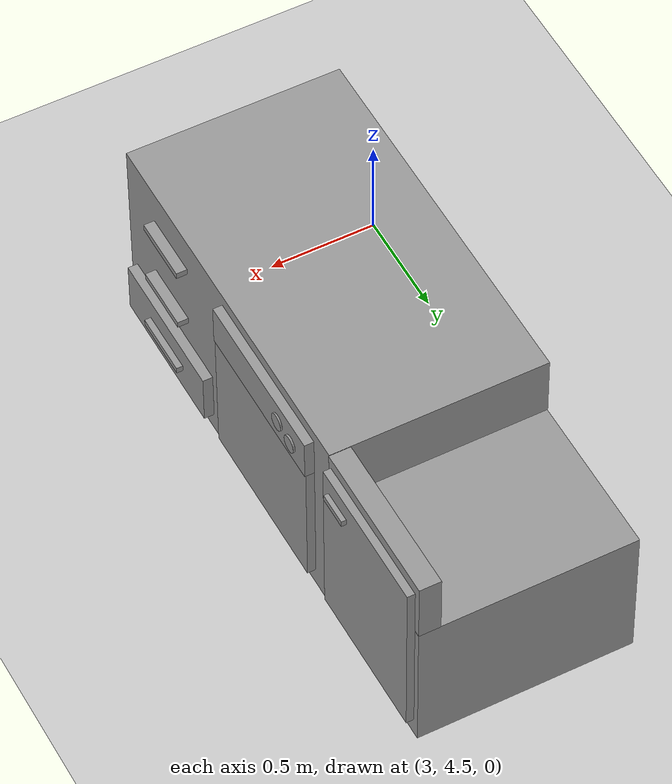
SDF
<sdf version="1.7">
 <world name="default">
  <model name="ground_plane">
   <static>1</static>
   <link name="link">
    <collision name="collision">
     <geometry><plane><normal>0 0 1</normal><size>100 100</size></plane></geometry>
     <surface>
      <contact><collide_bitmask>65535</collide_bitmask></contact>
      <friction><ode><mu>100</mu><mu2>50</mu2></ode></friction>
     </surface>
    </collision>
    <visual name="visual">
     <cast_shadows>0</cast_shadows>
     <geometry><plane><normal>0 0 1</normal><size>100 100</size></plane></geometry>
     <material>
      <script><uri>file://media/materials/scripts/gazebo.material</uri><name>Gazebo/Grey</name></script>
     </material>
    </visual>
   </link>
  </model>
  <model name="my_kitchen">
   <link name="link_0">
    <inertial>
     <mass>1</mass>
     <inertia><ixx>0.145833</ixx><ixy>0</ixy><ixz>0</ixz><iyy>0.145833</iyy><iyz>0</iyz><izz>0.125</izz></inertia>
    </inertial>
    <pose>-0.465747 -1.6095 0.842537 0 -0 0</pose>
    <visual name="visual">
     <pose>0 0 0 0 1.5707 0</pose>
     <geometry><cylinder><radius>0.04</radius><length>0.01</length></cylinder></geometry>
     <material>
      <lighting>1</lighting>
      <script><uri>file://media/materials/scripts/gazebo.material</uri><name>Gazebo/Grey</name></script>
      <shader type="pixel"><normal_map>__default__</normal_map></shader>
      <ambient>0.9 0.9 0.9 1</ambient>
      <diffuse>0.9 0.9 0.9 1</diffuse>
      <specular>0.01 0.01 0.01 1</specular>
      <emissive>0 0 0 1</emissive>
     </material>
    </visual>
    <collision name="collision">
     <pose>0 0 0 0 1.5707 0</pose>
     <geometry><cylinder><radius>0.04</radius><length>0.01</length></cylinder></geometry>
     <surface>
      <friction>
       <ode><mu>1</mu><mu2>1</mu2><fdir1>0 0 0</fdir1><slip1>0</slip1><slip2>0</slip2></ode>
       <torsional>
        <coefficient>1</coefficient>
        <patch_radius>0</patch_radius>
        <surface_radius>0</surface_radius>
        <use_patch_radius>1</use_patch_radius>
        <ode><slip>0</slip></ode>
       </torsional>
      </friction>
      <bounce><restitution_coefficient>0</restitution_coefficient><threshold>1e+06</threshold></bounce>
      <contact>
       <collide_without_contact>0</collide_without_contact>
       <collide_without_contact_bitmask>1</collide_without_contact_bitmask>
       <collide_bitmask>1</collide_bitmask>
       <ode>
        <soft_cfm>0</soft_cfm>
        <soft_erp>0.2</soft_erp>
        <kp>1e+13</kp>
        <kd>1</kd>
        <max_vel>0.01</max_vel>
        <min_depth>0</min_depth>
       </ode>
       <bullet>
        <split_impulse>1</split_impulse>
        <split_impulse_penetration_threshold>-0.01</split_impulse_penetration_threshold>
        <soft_cfm>0</soft_cfm>
        <soft_erp>0.2</soft_erp>
        <kp>1e+13</kp>
        <kd>1</kd>
       </bullet>
      </contact>
     </surface>
    </collision>
   </link>
   <link name="link_0_clone_0">
    <inertial>
     <mass>1</mass>
     <inertia><ixx>0.145833</ixx><ixy>0</ixy><ixz>0</ixz><iyy>0.145833</iyy><iyz>0</iyz><izz>0.125</izz></inertia>
    </inertial>
    <pose>-0.459347 -1.48795 0.840731 0 -0 0</pose>
    <visual name="visual">
     <pose>0 0 0 0 1.5707 0</pose>
     <geometry><cylinder><radius>0.04</radius><length>0.01</length></cylinder></geometry>
     <material>
      <lighting>1</lighting>
      <script><uri>file://media/materials/scripts/gazebo.material</uri><name>Gazebo/Grey</name></script>
      <shader type="pixel"><normal_map>__default__</normal_map></shader>
      <ambient>0.9 0.9 0.9 1</ambient>
      <diffuse>0.9 0.9 0.9 1</diffuse>
      <specular>0.01 0.01 0.01 1</specular>
      <emissive>0 0 0 1</emissive>
     </material>
    </visual>
    <collision name="collision">
     <pose>0 0 0 0 1.5707 0</pose>
     <geometry><cylinder><radius>0.04</radius><length>0.01</length></cylinder></geometry>
     <surface>
      <friction>
       <ode><mu>1</mu><mu2>1</mu2><fdir1>0 0 0</fdir1><slip1>0</slip1><slip2>0</slip2></ode>
       <torsional>
        <coefficient>1</coefficient>
        <patch_radius>0</patch_radius>
        <surface_radius>0</surface_radius>
        <use_patch_radius>1</use_patch_radius>
        <ode><slip>0</slip></ode>
       </torsional>
      </friction>
      <bounce><restitution_coefficient>0</restitution_coefficient><threshold>1e+06</threshold></bounce>
      <contact>
       <collide_without_contact>0</collide_without_contact>
       <collide_without_contact_bitmask>1</collide_without_contact_bitmask>
       <collide_bitmask>1</collide_bitmask>
       <ode>
        <soft_cfm>0</soft_cfm>
        <soft_erp>0.2</soft_erp>
        <kp>1e+13</kp>
        <kd>1</kd>
        <max_vel>0.01</max_vel>
        <min_depth>0</min_depth>
       </ode>
       <bullet>
        <split_impulse>1</split_impulse>
        <split_impulse_penetration_threshold>-0.01</split_impulse_penetration_threshold>
        <soft_cfm>0</soft_cfm>
        <soft_erp>0.2</soft_erp>
        <kp>1e+13</kp>
        <kd>1</kd>
       </bullet>
      </contact>
     </surface>
    </collision>
   </link>
   <link name="link_clone">
    <inertial>
     <mass>1</mass>
     <inertia>
      <ixx>0.166667</ixx>
      <ixy>0</ixy>
      <ixz>0</ixz>
      <iyy>0.166667</iyy>
      <iyz>0</iyz>
      <izz>0.166667</izz>
     </inertia>
    </inertial>
    <pose>-1.0136 -2.15012 0 0 -0 0</pose>
    <visual name="visual">
     <geometry><box><size>1 1.8 1</size></box></geometry>
     <material>
      <script><name>Gazebo/Grey</name><uri>file://media/materials/scripts/gazebo.material</uri></script>
      <shader type="pixel"><normal_map>__default__</normal_map></shader>
      <ambient>0.8 0.8 0.8 1</ambient>
      <diffuse>0.65 0.65 0.65 1</diffuse>
      <specular>0.01 0.01 0.01 1</specular>
      <emissive>0 0 0 1</emissive>
     </material>
     <pose>0 0 0.5 0 -0 0</pose>
    </visual>
    <collision name="collision">
     <pose>0 0 0.5 0 -0 0</pose>
     <geometry><box><size>1 1.8 1</size></box></geometry>
     <surface>
      <friction>
       <ode><mu>1</mu><mu2>1</mu2><fdir1>0 0 0</fdir1><slip1>0</slip1><slip2>0</slip2></ode>
       <torsional>
        <coefficient>1</coefficient>
        <patch_radius>0</patch_radius>
        <surface_radius>0</surface_radius>
        <use_patch_radius>1</use_patch_radius>
        <ode><slip>0</slip></ode>
       </torsional>
      </friction>
      <bounce><restitution_coefficient>0</restitution_coefficient><threshold>1e+06</threshold></bounce>
      <contact>
       <collide_without_contact>0</collide_without_contact>
       <collide_without_contact_bitmask>1</collide_without_contact_bitmask>
       <collide_bitmask>1</collide_bitmask>
       <ode>
        <soft_cfm>0</soft_cfm>
        <soft_erp>0.2</soft_erp>
        <kp>1e+13</kp>
        <kd>1</kd>
        <max_vel>0.01</max_vel>
        <min_depth>0</min_depth>
       </ode>
       <bullet>
        <split_impulse>1</split_impulse>
        <split_impulse_penetration_threshold>-0.01</split_impulse_penetration_threshold>
        <soft_cfm>0</soft_cfm>
        <soft_erp>0.2</soft_erp>
        <kp>1e+13</kp>
        <kd>1</kd>
       </bullet>
      </contact>
     </surface>
    </collision>
   </link>
   <link name="link_clone_clone_clone">
    <inertial>
     <mass>1</mass>
     <inertia>
      <ixx>0.166667</ixx>
      <ixy>0</ixy>
      <ixz>0</ixz>
      <iyy>0.166667</iyy>
      <iyz>0</iyz>
      <izz>0.166667</izz>
     </inertia>
    </inertial>
    <pose>-1.01121 -0.87639 -0.152519 0 -0 0</pose>
    <visual name="visual">
     <geometry><box><size>1 0.75 0.7</size></box></geometry>
     <material>
      <script><name>Gazebo/Grey</name><uri>file://media/materials/scripts/gazebo.material</uri></script>
      <shader type="pixel"><normal_map>__default__</normal_map></shader>
      <ambient>0.8 0.8 0.8 1</ambient>
      <diffuse>0.65 0.65 0.65 1</diffuse>
      <specular>0.01 0.01 0.01 1</specular>
      <emissive>0 0 0 1</emissive>
     </material>
     <pose>0 0 0.5 0 -0 0</pose>
    </visual>
    <collision name="collision">
     <pose>0 0 0.5 0 -0 0</pose>
     <geometry><box><size>1 0.75 0.7</size></box></geometry>
     <surface>
      <friction>
       <ode><mu>1</mu><mu2>1</mu2><fdir1>0 0 0</fdir1><slip1>0</slip1><slip2>0</slip2></ode>
       <torsional>
        <coefficient>1</coefficient>
        <patch_radius>0</patch_radius>
        <surface_radius>0</surface_radius>
        <use_patch_radius>1</use_patch_radius>
        <ode><slip>0</slip></ode>
       </torsional>
      </friction>
      <bounce><restitution_coefficient>0</restitution_coefficient><threshold>1e+06</threshold></bounce>
      <contact>
       <collide_without_contact>0</collide_without_contact>
       <collide_without_contact_bitmask>1</collide_without_contact_bitmask>
       <collide_bitmask>1</collide_bitmask>
       <ode>
        <soft_cfm>0</soft_cfm>
        <soft_erp>0.2</soft_erp>
        <kp>1e+13</kp>
        <kd>1</kd>
        <max_vel>0.01</max_vel>
        <min_depth>0</min_depth>
       </ode>
       <bullet>
        <split_impulse>1</split_impulse>
        <split_impulse_penetration_threshold>-0.01</split_impulse_penetration_threshold>
        <soft_cfm>0</soft_cfm>
        <soft_erp>0.2</soft_erp>
        <kp>1e+13</kp>
        <kd>1</kd>
       </bullet>
      </contact>
     </surface>
    </collision>
   </link>
   <link name="link_clone_clone_clone_0">
    <inertial>
     <mass>1</mass>
     <inertia>
      <ixx>0.166667</ixx>
      <ixy>0</ixy>
      <ixz>0</ixz>
      <iyy>0.166667</iyy>
      <iyz>0</iyz>
      <izz>0.166667</izz>
     </inertia>
    </inertial>
    <pose>-0.56153 -0.875379 0.346728 0 -0 0</pose>
    <gravity>0</gravity>
    <visual name="visual">
     <geometry><box><size>0.1 0.75 0.3</size></box></geometry>
     <material>
      <script><name>Gazebo/Grey</name><uri>file://media/materials/scripts/gazebo.material</uri></script>
      <shader type="pixel"><normal_map>__default__</normal_map></shader>
      <ambient>0.8 0.8 0.8 1</ambient>
      <diffuse>0.65 0.65 0.65 1</diffuse>
      <specular>0.01 0.01 0.01 1</specular>
      <emissive>0 0 0 1</emissive>
     </material>
     <pose>0 0 0.5 0 -0 0</pose>
    </visual>
    <collision name="collision">
     <pose>0 0 0.5 0 -0 0</pose>
     <geometry><box><size>0.1 0.75 0.3</size></box></geometry>
     <surface>
      <friction>
       <ode><mu>1</mu><mu2>1</mu2><fdir1>0 0 0</fdir1><slip1>0</slip1><slip2>0</slip2></ode>
       <torsional>
        <coefficient>1</coefficient>
        <patch_radius>0</patch_radius>
        <surface_radius>0</surface_radius>
        <use_patch_radius>1</use_patch_radius>
        <ode><slip>0</slip></ode>
       </torsional>
      </friction>
      <bounce><restitution_coefficient>0</restitution_coefficient><threshold>1e+06</threshold></bounce>
      <contact>
       <collide_without_contact>0</collide_without_contact>
       <collide_without_contact_bitmask>1</collide_without_contact_bitmask>
       <collide_bitmask>1</collide_bitmask>
       <ode>
        <soft_cfm>0</soft_cfm>
        <soft_erp>0.2</soft_erp>
        <kp>1e+13</kp>
        <kd>1</kd>
        <max_vel>0.01</max_vel>
        <min_depth>0</min_depth>
       </ode>
       <bullet>
        <split_impulse>1</split_impulse>
        <split_impulse_penetration_threshold>-0.01</split_impulse_penetration_threshold>
        <soft_cfm>0</soft_cfm>
        <soft_erp>0.2</soft_erp>
        <kp>1e+13</kp>
        <kd>1</kd>
       </bullet>
      </contact>
     </surface>
    </collision>
   </link>
   <link name="link_clone_clone_clone_0_clone_clone_0">
    <inertial>
     <mass>1</mass>
     <inertia>
      <ixx>0.166667</ixx>
      <ixy>0</ixy>
      <ixz>0</ixz>
      <iyy>0.166667</iyy>
      <iyz>0</iyz>
      <izz>0.166667</izz>
     </inertia>
    </inertial>
    <pose>-0.49222 -2.64791 -0.281579 0 -0 0</pose>
    <visual name="visual">
     <geometry><box><size>0.05 0.7 0.25</size></box></geometry>
     <material>
      <script><name>Gazebo/Grey</name><uri>file://media/materials/scripts/gazebo.material</uri></script>
      <shader type="pixel"><normal_map>__default__</normal_map></shader>
      <ambient>0.4 0.4 0.4 1</ambient>
      <diffuse>0.4 0.4 0.4 1</diffuse>
      <specular>0.01 0.01 0.01 1</specular>
      <emissive>0 0 0 1</emissive>
     </material>
     <pose>0 0 0.5 0 -0 0</pose>
    </visual>
    <collision name="collision">
     <pose>0 0 0.5 0 -0 0</pose>
     <geometry><box><size>0.05 0.7 0.25</size></box></geometry>
     <surface>
      <friction>
       <ode><mu>1</mu><mu2>1</mu2><fdir1>0 0 0</fdir1><slip1>0</slip1><slip2>0</slip2></ode>
       <torsional>
        <coefficient>1</coefficient>
        <patch_radius>0</patch_radius>
        <surface_radius>0</surface_radius>
        <use_patch_radius>1</use_patch_radius>
        <ode><slip>0</slip></ode>
       </torsional>
      </friction>
      <bounce><restitution_coefficient>0</restitution_coefficient><threshold>1e+06</threshold></bounce>
      <contact>
       <collide_without_contact>0</collide_without_contact>
       <collide_without_contact_bitmask>1</collide_without_contact_bitmask>
       <collide_bitmask>1</collide_bitmask>
       <ode>
        <soft_cfm>0</soft_cfm>
        <soft_erp>0.2</soft_erp>
        <kp>1e+13</kp>
        <kd>1</kd>
        <max_vel>0.01</max_vel>
        <min_depth>0</min_depth>
       </ode>
       <bullet>
        <split_impulse>1</split_impulse>
        <split_impulse_penetration_threshold>-0.01</split_impulse_penetration_threshold>
        <soft_cfm>0</soft_cfm>
        <soft_erp>0.2</soft_erp>
        <kp>1e+13</kp>
        <kd>1</kd>
       </bullet>
      </contact>
     </surface>
    </collision>
   </link>
   <link name="link_clone_clone_clone_0_clone_clone_clone">
    <inertial>
     <mass>1</mass>
     <inertia>
      <ixx>0.166667</ixx>
      <ixy>0</ixy>
      <ixz>0</ixz>
      <iyy>0.166667</iyy>
      <iyz>0</iyz>
      <izz>0.166667</izz>
     </inertia>
    </inertial>
    <pose>-0.4781 -1.10993 0.338029 0 -0 0</pose>
    <gravity>0</gravity>
    <visual name="visual">
     <geometry><box><size>0.05 0.15 0.03</size></box></geometry>
     <material>
      <script><name>Gazebo/Grey</name><uri>file://media/materials/scripts/gazebo.material</uri></script>
      <shader type="pixel"><normal_map>__default__</normal_map></shader>
      <ambient>0.9 0.9 0.9 1</ambient>
      <diffuse>0.8 0.8 0.8 1</diffuse>
      <specular>0.01 0.01 0.01 1</specular>
      <emissive>0 0 0 1</emissive>
     </material>
     <pose>0 0 0.5 0 -0 0</pose>
    </visual>
    <collision name="collision">
     <pose>0 0 0.5 0 -0 0</pose>
     <geometry><box><size>0.05 0.15 0.03</size></box></geometry>
     <surface>
      <friction>
       <ode><mu>1</mu><mu2>1</mu2><fdir1>0 0 0</fdir1><slip1>0</slip1><slip2>0</slip2></ode>
       <torsional>
        <coefficient>1</coefficient>
        <patch_radius>0</patch_radius>
        <surface_radius>0</surface_radius>
        <use_patch_radius>1</use_patch_radius>
        <ode><slip>0</slip></ode>
       </torsional>
      </friction>
      <bounce><restitution_coefficient>0</restitution_coefficient><threshold>1e+06</threshold></bounce>
      <contact>
       <collide_without_contact>0</collide_without_contact>
       <collide_without_contact_bitmask>1</collide_without_contact_bitmask>
       <collide_bitmask>1</collide_bitmask>
       <ode>
        <soft_cfm>0</soft_cfm>
        <soft_erp>0.2</soft_erp>
        <kp>1e+13</kp>
        <kd>1</kd>
        <max_vel>0.01</max_vel>
        <min_depth>0</min_depth>
       </ode>
       <bullet>
        <split_impulse>1</split_impulse>
        <split_impulse_penetration_threshold>-0.01</split_impulse_penetration_threshold>
        <soft_cfm>0</soft_cfm>
        <soft_erp>0.2</soft_erp>
        <kp>1e+13</kp>
        <kd>1</kd>
       </bullet>
      </contact>
     </surface>
    </collision>
   </link>
   <link name="link_clone_clone_clone_0_clone_clone_clone_0">
    <inertial>
     <mass>1</mass>
     <inertia>
      <ixx>0.166667</ixx>
      <ixy>0</ixy>
      <ixz>0</ixz>
      <iyy>0.166667</iyy>
      <iyz>0</iyz>
      <izz>0.166667</izz>
     </inertia>
    </inertial>
    <pose>-0.499193 -1.7796 0.016041 0 -0 0</pose>
    <gravity>0</gravity>
    <visual name="visual">
     <geometry><box><size>0.05 0.8 0.85</size></box></geometry>
     <material>
      <script><name>Gazebo/Grey</name><uri>file://media/materials/scripts/gazebo.material</uri></script>
      <shader type="pixel"><normal_map>__default__</normal_map></shader>
      <ambient>0.9 0.9 0.9 1</ambient>
      <diffuse>0.9 0.9 0.9 1</diffuse>
      <specular>0.01 0.01 0.01 1</specular>
      <emissive>0 0 0 1</emissive>
     </material>
     <pose>0 0 0.5 0 -0 0</pose>
    </visual>
    <collision name="collision">
     <pose>0 0 0.5 0 -0 0</pose>
     <geometry><box><size>0.05 0.8 0.85</size></box></geometry>
     <surface>
      <friction>
       <ode><mu>1</mu><mu2>1</mu2><fdir1>0 0 0</fdir1><slip1>0</slip1><slip2>0</slip2></ode>
       <torsional>
        <coefficient>1</coefficient>
        <patch_radius>0</patch_radius>
        <surface_radius>0</surface_radius>
        <use_patch_radius>1</use_patch_radius>
        <ode><slip>0</slip></ode>
       </torsional>
      </friction>
      <bounce><restitution_coefficient>0</restitution_coefficient><threshold>1e+06</threshold></bounce>
      <contact>
       <collide_without_contact>0</collide_without_contact>
       <collide_without_contact_bitmask>1</collide_without_contact_bitmask>
       <collide_bitmask>1</collide_bitmask>
       <ode>
        <soft_cfm>0</soft_cfm>
        <soft_erp>0.2</soft_erp>
        <kp>1e+13</kp>
        <kd>1</kd>
        <max_vel>0.01</max_vel>
        <min_depth>0</min_depth>
       </ode>
       <bullet>
        <split_impulse>1</split_impulse>
        <split_impulse_penetration_threshold>-0.01</split_impulse_penetration_threshold>
        <soft_cfm>0</soft_cfm>
        <soft_erp>0.2</soft_erp>
        <kp>1e+13</kp>
        <kd>1</kd>
       </bullet>
      </contact>
     </surface>
    </collision>
   </link>
   <link name="link_clone_clone_clone_0_clone_clone_clone_0_clone">
    <inertial>
     <mass>1</mass>
     <inertia>
      <ixx>0.166667</ixx>
      <ixy>0</ixy>
      <ixz>0</ixz>
      <iyy>0.166667</iyy>
      <iyz>0</iyz>
      <izz>0.166667</izz>
     </inertia>
    </inertial>
    <pose>-0.50046 -0.88146 0.016041 0 -0 0</pose>
    <visual name="visual">
     <geometry><box><size>0.05 0.7 0.85</size></box></geometry>
     <material>
      <script><name>Gazebo/Grey</name><uri>file://media/materials/scripts/gazebo.material</uri></script>
      <shader type="pixel"><normal_map>__default__</normal_map></shader>
      <ambient>0.4 0.4 0.4 1</ambient>
      <diffuse>0.4 0.4 0.4 1</diffuse>
      <specular>0.01 0.01 0.01 1</specular>
      <emissive>0 0 0 1</emissive>
     </material>
     <pose>0 0 0.5 0 -0 0</pose>
    </visual>
    <collision name="collision">
     <pose>0 0 0.5 0 -0 0</pose>
     <geometry><box><size>0.05 0.7 0.85</size></box></geometry>
     <surface>
      <friction>
       <ode><mu>1</mu><mu2>1</mu2><fdir1>0 0 0</fdir1><slip1>0</slip1><slip2>0</slip2></ode>
       <torsional>
        <coefficient>1</coefficient>
        <patch_radius>0</patch_radius>
        <surface_radius>0</surface_radius>
        <use_patch_radius>1</use_patch_radius>
        <ode><slip>0</slip></ode>
       </torsional>
      </friction>
      <bounce><restitution_coefficient>0</restitution_coefficient><threshold>1e+06</threshold></bounce>
      <contact>
       <collide_without_contact>0</collide_without_contact>
       <collide_without_contact_bitmask>1</collide_without_contact_bitmask>
       <collide_bitmask>1</collide_bitmask>
       <ode>
        <soft_cfm>0</soft_cfm>
        <soft_erp>0.2</soft_erp>
        <kp>1e+13</kp>
        <kd>1</kd>
        <max_vel>0.01</max_vel>
        <min_depth>0</min_depth>
       </ode>
       <bullet>
        <split_impulse>1</split_impulse>
        <split_impulse_penetration_threshold>-0.01</split_impulse_penetration_threshold>
        <soft_cfm>0</soft_cfm>
        <soft_erp>0.2</soft_erp>
        <kp>1e+13</kp>
        <kd>1</kd>
       </bullet>
      </contact>
     </surface>
    </collision>
   </link>
   <link name="link_clone_clone_clone_0_clone_clone_clone_1">
    <inertial>
     <mass>1</mass>
     <inertia>
      <ixx>0.166667</ixx>
      <ixy>0</ixy>
      <ixz>0</ixz>
      <iyy>0.166667</iyy>
      <iyz>0</iyz>
      <izz>0.166667</izz>
     </inertia>
    </inertial>
    <pose>-0.494653 -1.77941 0.34131 0 -0 0</pose>
    <visual name="visual">
     <geometry><box><size>0.05 0.8 0.2</size></box></geometry>
     <material>
      <script><name>Gazebo/Grey</name><uri>file://media/materials/scripts/gazebo.material</uri></script>
      <shader type="pixel"><normal_map>__default__</normal_map></shader>
      <ambient>0.4 0.4 0.4 1</ambient>
      <diffuse>0.4 0.4 0.4 1</diffuse>
      <specular>0.01 0.01 0.01 1</specular>
      <emissive>0 0 0 1</emissive>
     </material>
     <pose>0 0 0.5 0 -0 0</pose>
    </visual>
    <collision name="collision">
     <pose>0 0 0.5 0 -0 0</pose>
     <geometry><box><size>0.05 0.8 0.2</size></box></geometry>
     <surface>
      <friction>
       <ode><mu>1</mu><mu2>1</mu2><fdir1>0 0 0</fdir1><slip1>0</slip1><slip2>0</slip2></ode>
       <torsional>
        <coefficient>1</coefficient>
        <patch_radius>0</patch_radius>
        <surface_radius>0</surface_radius>
        <use_patch_radius>1</use_patch_radius>
        <ode><slip>0</slip></ode>
       </torsional>
      </friction>
      <bounce><restitution_coefficient>0</restitution_coefficient><threshold>1e+06</threshold></bounce>
      <contact>
       <collide_without_contact>0</collide_without_contact>
       <collide_without_contact_bitmask>1</collide_without_contact_bitmask>
       <collide_bitmask>1</collide_bitmask>
       <ode>
        <soft_cfm>0</soft_cfm>
        <soft_erp>0.2</soft_erp>
        <kp>1e+13</kp>
        <kd>1</kd>
        <max_vel>0.01</max_vel>
        <min_depth>0</min_depth>
       </ode>
       <bullet>
        <split_impulse>1</split_impulse>
        <split_impulse_penetration_threshold>-0.01</split_impulse_penetration_threshold>
        <soft_cfm>0</soft_cfm>
        <soft_erp>0.2</soft_erp>
        <kp>1e+13</kp>
        <kd>1</kd>
       </bullet>
      </contact>
     </surface>
    </collision>
   </link>
   <link name="link_clone_clone_clone_0_clone_clone_clone_clone">
    <inertial>
     <mass>1</mass>
     <inertia>
      <ixx>0.166667</ixx>
      <ixy>0</ixy>
      <ixz>0</ixz>
      <iyy>0.166667</iyy>
      <iyz>0</iyz>
      <izz>0.166667</izz>
     </inertia>
    </inertial>
    <pose>-0.477732 -2.6395 0.015278 0 -0 0</pose>
    <visual name="visual">
     <geometry><box><size>0.05 0.3 0.03</size></box></geometry>
     <material>
      <script><name>Gazebo/Grey</name><uri>file://media/materials/scripts/gazebo.material</uri></script>
      <shader type="pixel"><normal_map>__default__</normal_map></shader>
      <ambient>0.9 0.9 0.9 1</ambient>
      <diffuse>0.8 0.8 0.8 1</diffuse>
      <specular>0.01 0.01 0.01 1</specular>
      <emissive>0 0 0 1</emissive>
     </material>
     <pose>0 0 0.5 0 -0 0</pose>
    </visual>
    <collision name="collision">
     <pose>0 0 0.5 0 -0 0</pose>
     <geometry><box><size>0.05 0.3 0.03</size></box></geometry>
     <surface>
      <friction>
       <ode><mu>1</mu><mu2>1</mu2><fdir1>0 0 0</fdir1><slip1>0</slip1><slip2>0</slip2></ode>
       <torsional>
        <coefficient>1</coefficient>
        <patch_radius>0</patch_radius>
        <surface_radius>0</surface_radius>
        <use_patch_radius>1</use_patch_radius>
        <ode><slip>0</slip></ode>
       </torsional>
      </friction>
      <bounce><restitution_coefficient>0</restitution_coefficient><threshold>1e+06</threshold></bounce>
      <contact>
       <collide_without_contact>0</collide_without_contact>
       <collide_without_contact_bitmask>1</collide_without_contact_bitmask>
       <collide_bitmask>1</collide_bitmask>
       <ode>
        <soft_cfm>0</soft_cfm>
        <soft_erp>0.2</soft_erp>
        <kp>1e+13</kp>
        <kd>1</kd>
        <max_vel>0.01</max_vel>
        <min_depth>0</min_depth>
       </ode>
       <bullet>
        <split_impulse>1</split_impulse>
        <split_impulse_penetration_threshold>-0.01</split_impulse_penetration_threshold>
        <soft_cfm>0</soft_cfm>
        <soft_erp>0.2</soft_erp>
        <kp>1e+13</kp>
        <kd>1</kd>
       </bullet>
      </contact>
     </surface>
    </collision>
   </link>
   <link name="link_clone_clone_clone_0_clone_clone_clone_clone_0">
    <inertial>
     <mass>1</mass>
     <inertia>
      <ixx>0.166667</ixx>
      <ixy>0</ixy>
      <ixz>0</ixz>
      <iyy>0.166667</iyy>
      <iyz>0</iyz>
      <izz>0.166667</izz>
     </inertia>
    </inertial>
    <pose>-0.485904 -2.64716 0.318441 0 -0 0</pose>
    <visual name="visual">
     <geometry><box><size>0.05 0.3 0.03</size></box></geometry>
     <material>
      <script><name>Gazebo/Grey</name><uri>file://media/materials/scripts/gazebo.material</uri></script>
      <shader type="pixel"><normal_map>__default__</normal_map></shader>
      <ambient>0.9 0.9 0.9 1</ambient>
      <diffuse>0.8 0.8 0.8 1</diffuse>
      <specular>0.01 0.01 0.01 1</specular>
      <emissive>0 0 0 1</emissive>
     </material>
     <pose>0 0 0.5 0 -0 0</pose>
    </visual>
    <collision name="collision">
     <pose>0 0 0.5 0 -0 0</pose>
     <geometry><box><size>0.05 0.3 0.03</size></box></geometry>
     <surface>
      <friction>
       <ode><mu>1</mu><mu2>1</mu2><fdir1>0 0 0</fdir1><slip1>0</slip1><slip2>0</slip2></ode>
       <torsional>
        <coefficient>1</coefficient>
        <patch_radius>0</patch_radius>
        <surface_radius>0</surface_radius>
        <use_patch_radius>1</use_patch_radius>
        <ode><slip>0</slip></ode>
       </torsional>
      </friction>
      <bounce><restitution_coefficient>0</restitution_coefficient><threshold>1e+06</threshold></bounce>
      <contact>
       <collide_without_contact>0</collide_without_contact>
       <collide_without_contact_bitmask>1</collide_without_contact_bitmask>
       <collide_bitmask>1</collide_bitmask>
       <ode>
        <soft_cfm>0</soft_cfm>
        <soft_erp>0.2</soft_erp>
        <kp>1e+13</kp>
        <kd>1</kd>
        <max_vel>0.01</max_vel>
        <min_depth>0</min_depth>
       </ode>
       <bullet>
        <split_impulse>1</split_impulse>
        <split_impulse_penetration_threshold>-0.01</split_impulse_penetration_threshold>
        <soft_cfm>0</soft_cfm>
        <soft_erp>0.2</soft_erp>
        <kp>1e+13</kp>
        <kd>1</kd>
       </bullet>
      </contact>
     </surface>
    </collision>
   </link>
   <link name="link_clone_clone_clone_0_clone_clone_clone_clone_clone">
    <inertial>
     <mass>1</mass>
     <inertia>
      <ixx>0.166667</ixx>
      <ixy>0</ixy>
      <ixz>0</ixz>
      <iyy>0.166667</iyy>
      <iyz>0</iyz>
      <izz>0.166667</izz>
     </inertia>
    </inertial>
    <pose>-0.462675 -2.63964 -0.279787 0 -0 0</pose>
    <gravity>0</gravity>
    <visual name="visual">
     <geometry><box><size>0.05 0.3 0.03</size></box></geometry>
     <material>
      <script><name>Gazebo/Grey</name><uri>file://media/materials/scripts/gazebo.material</uri></script>
      <shader type="pixel"><normal_map>__default__</normal_map></shader>
      <ambient>0.9 0.9 0.9 1</ambient>
      <diffuse>0.8 0.8 0.8 1</diffuse>
      <specular>0.01 0.01 0.01 1</specular>
      <emissive>0 0 0 1</emissive>
     </material>
     <pose>0 0 0.5 0 -0 0</pose>
    </visual>
    <collision name="collision">
     <pose>0 0 0.5 0 -0 0</pose>
     <geometry><box><size>0.05 0.3 0.03</size></box></geometry>
     <surface>
      <friction>
       <ode><mu>1</mu><mu2>1</mu2><fdir1>0 0 0</fdir1><slip1>0</slip1><slip2>0</slip2></ode>
       <torsional>
        <coefficient>1</coefficient>
        <patch_radius>0</patch_radius>
        <surface_radius>0</surface_radius>
        <use_patch_radius>1</use_patch_radius>
        <ode><slip>0</slip></ode>
       </torsional>
      </friction>
      <bounce><restitution_coefficient>0</restitution_coefficient><threshold>1e+06</threshold></bounce>
      <contact>
       <collide_without_contact>0</collide_without_contact>
       <collide_without_contact_bitmask>1</collide_without_contact_bitmask>
       <collide_bitmask>1</collide_bitmask>
       <ode>
        <soft_cfm>0</soft_cfm>
        <soft_erp>0.2</soft_erp>
        <kp>1e+13</kp>
        <kd>1</kd>
        <max_vel>0.01</max_vel>
        <min_depth>0</min_depth>
       </ode>
       <bullet>
        <split_impulse>1</split_impulse>
        <split_impulse_penetration_threshold>-0.01</split_impulse_penetration_threshold>
        <soft_cfm>0</soft_cfm>
        <soft_erp>0.2</soft_erp>
        <kp>1e+13</kp>
        <kd>1</kd>
       </bullet>
      </contact>
     </surface>
    </collision>
   </link>
   <static>1</static>
   <pose>4.63339 7.47111 0 0 -0 0</pose>
  </model>
 </world>
</sdf>
